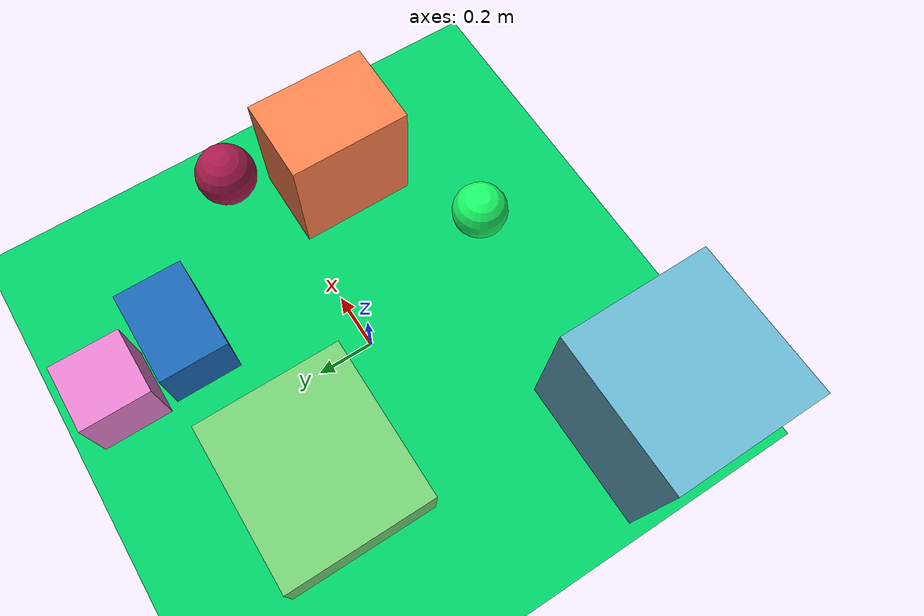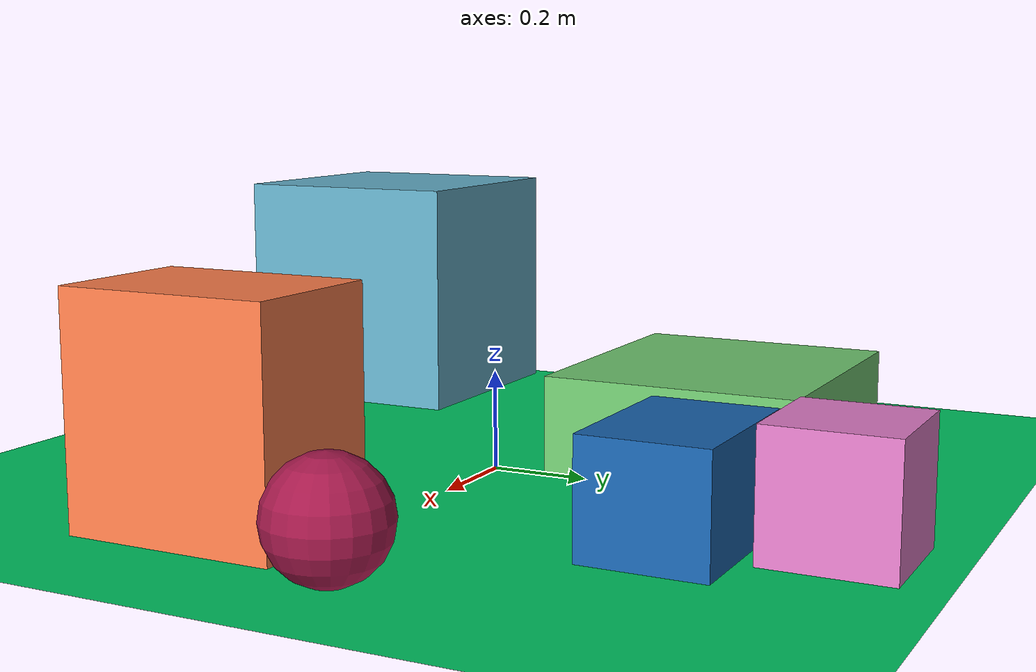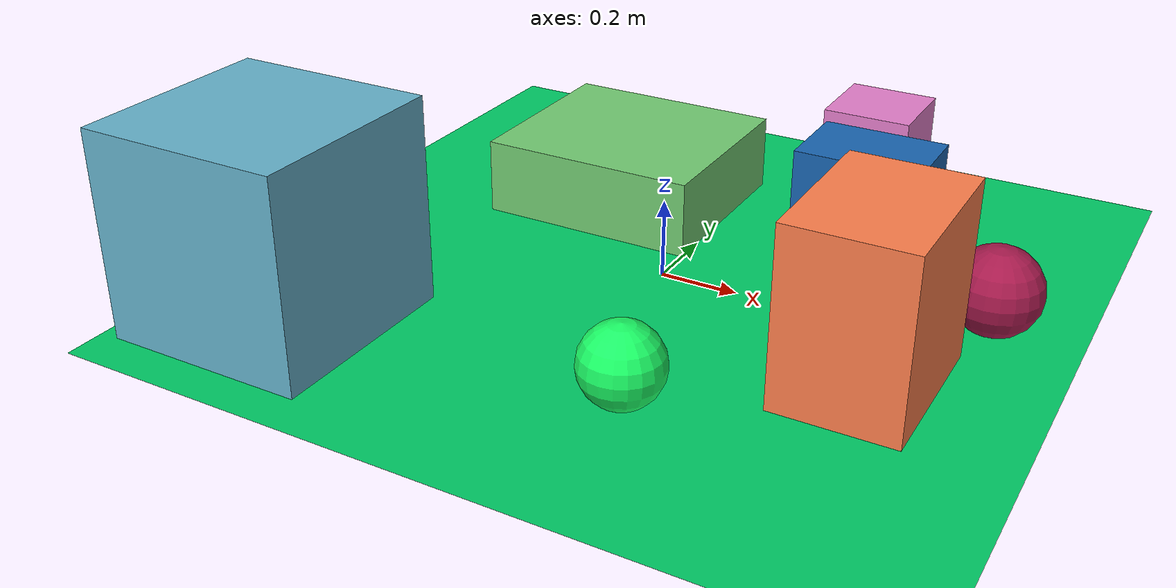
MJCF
<mujoco>
   <asset>
<texture type="skybox" builtin="gradient" rgb1="0.6 0.5 0.7" rgb2="0.6 0.1 0.8" width="256" height="256"/>
<texture name="flat_0" builtin="flat" rgb1="0.1 0.4 0.7" rgb2="0.1 0.4 0.7"  width="200" height="200"/>
<texture name="flat_1" builtin="flat" rgb1="0.4 0.7 0.8" rgb2="0.4 0.7 0.8"  width="200" height="200"/>
<texture name="gradient_2" builtin="gradient" rgb1="0.6 0.9 0.1" rgb2="0.3 0.7 0.8" width="200" height="200"/>
<texture name="flat_3" builtin="flat" rgb1="1.0 0.5 0.3" rgb2="1.0 0.5 0.3"  width="200" height="200"/>
<texture name="checker_4" builtin="checker" type="2d" rgb1="0.6 0.1 0.1" rgb2="0.7 0.1 0.5" width="200" height="200"/>
<texture name="flat_5" builtin="flat" rgb1="0.9 0.5 0.8" rgb2="0.9 0.5 0.8"  width="200" height="200"/>
<texture name="flat_6" builtin="flat" rgb1="0.1 1.0 0.4" rgb2="0.1 1.0 0.4"  width="200" height="200"/><material name="flat_0_mat" reflectance="0" texture="flat_0" texuniform="true"/>
<material name="flat_1_mat" reflectance="0" texture="flat_1" texuniform="true"/>
<material name="gradient_2_mat" reflectance="0" texture="gradient_2" texuniform="true"/>
<material name="flat_3_mat" reflectance="0" texture="flat_3" texuniform="true"/>
<material name="checker_4_mat" reflectance="0" texrepeat="10 10" texture="checker_4" texuniform="false" />
<material name="flat_5_mat" reflectance="0" texture="flat_5" texuniform="true"/>
<material name="flat_6_mat" reflectance="0" texture="flat_6" texuniform="true"/>
   </asset>

   <worldbody>
      <light diffuse=".9 .9 .9" pos="0 0 3" dir="0 0 -1"/>
     <geom type="plane" size="1 1 0.1" rgba="0.0 0.8 0.4 1"/>
<geom type="box" pos="0.34 0.53 0.11" size="0.17 0.12 0.11" material="flat_0_mat" />
<geom type="box" pos="-0.69 -0.64 0.26" size="0.26 0.26 0.26" material="flat_1_mat" />
<geom type="box" pos="-0.29 0.37 0.1" size="0.29 0.26 0.1" material="gradient_2_mat" />
<geom type="box" pos="0.61 -0.23 0.22" size="0.15 0.21 0.22" material="flat_3_mat" />
<geom type="sphere" pos="0.79 0.12 0.11" size="0.11 0.11 0.11" material="checker_4_mat" />
<geom type="box" pos="0.27 0.8 0.12" size="0.12 0.12 0.12" material="flat_5_mat" />
<geom type="sphere" pos="0.19 -0.57 0.1" size="0.1 0.1 0.1" material="flat_6_mat" /><camera euler="60 0 180" fovy="60" name="camera_a" pos="0 -1.5 1"></camera>   </worldbody>
</mujoco>
